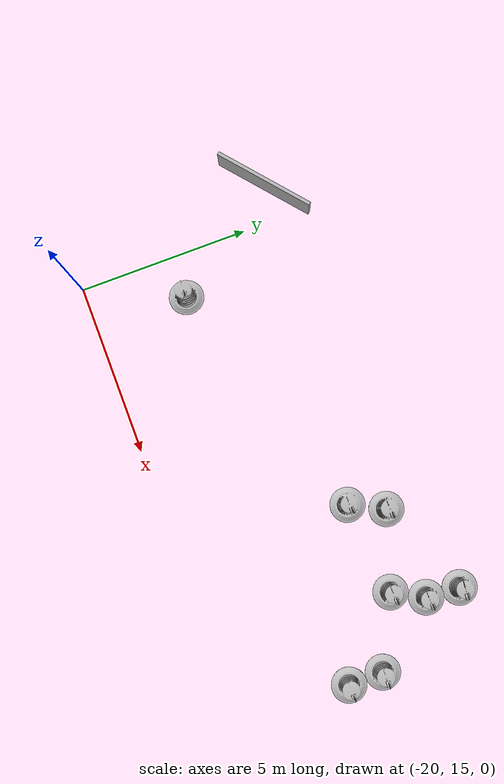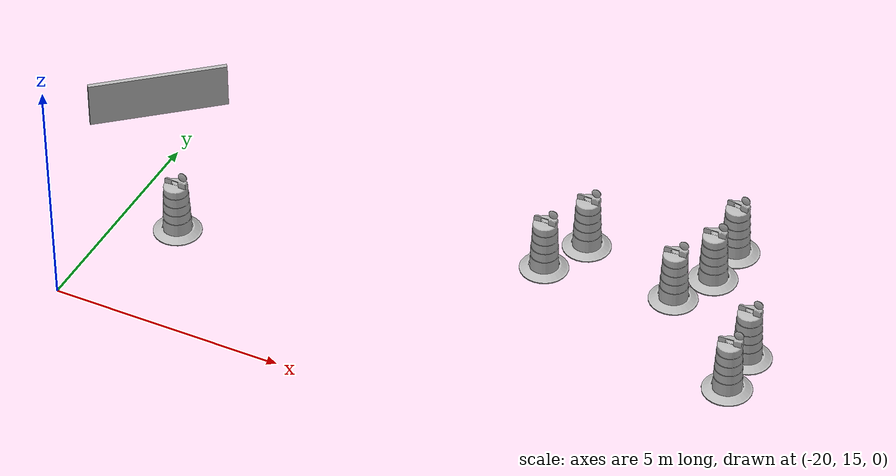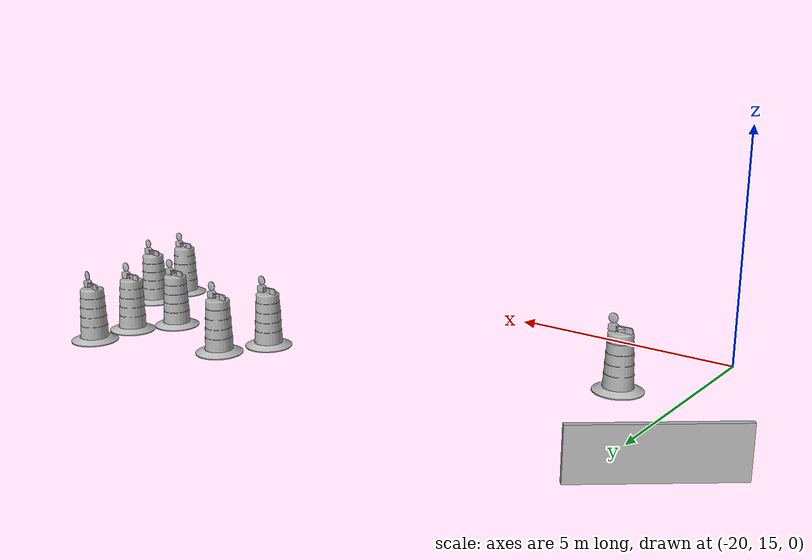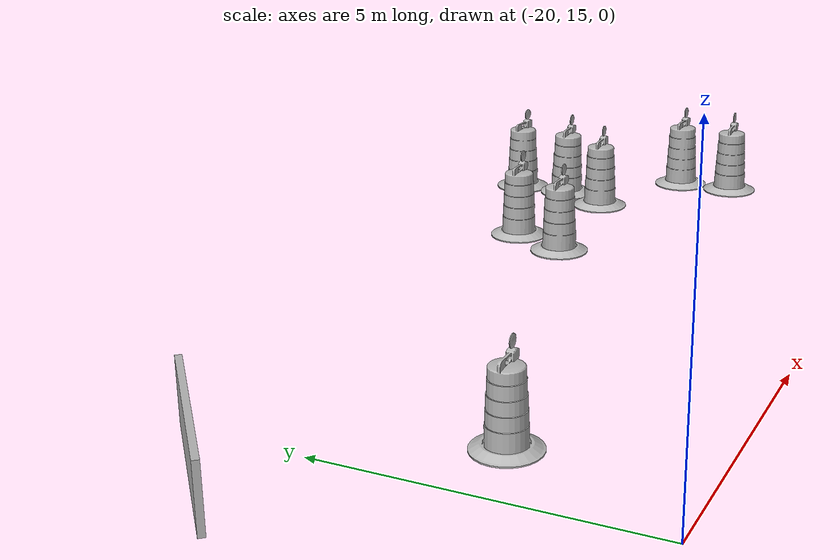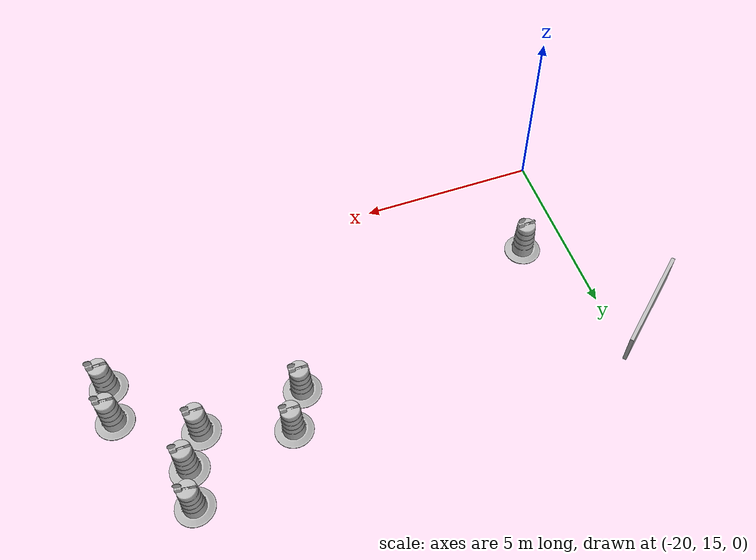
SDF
<sdf version="1.7">
 <world name="default">
  <model name="Construction Barrel_28">
   <link name="link">
    <inertial>
     <pose>0 0 0.4 0 -0 0</pose>
     <mass>500</mass>
     <inertia><ixx>51.2096</ixx><iyy>51.2096</iyy><izz>25</izz><ixy>0</ixy><ixz>0</ixz><iyz>0</iyz></inertia>
    </inertial>
    <collision name="collision">
     <geometry><mesh><uri>model://construction_barrel/meshes/construction_barrel.dae</uri></mesh></geometry>
    </collision>
    <visual name="visual">
     <geometry><mesh><uri>model://construction_barrel/meshes/construction_barrel.dae</uri></mesh></geometry>
    </visual>
    <velocity_decay><linear>0</linear><angular>0</angular></velocity_decay>
   </link>
   <pose>-18.75 17.75 0 0 0 -0.000858</pose>
   <static>0</static>
  </model>
  <model name="Construction Barrel_29">
   <link name="link">
    <inertial>
     <pose>0 0 0.4 0 -0 0</pose>
     <mass>500</mass>
     <inertia><ixx>51.2096</ixx><iyy>51.2096</iyy><izz>25</izz><ixy>0</ixy><ixz>0</ixz><iyz>0</iyz></inertia>
    </inertial>
    <collision name="collision">
     <geometry><mesh><uri>model://construction_barrel/meshes/construction_barrel.dae</uri></mesh></geometry>
    </collision>
    <visual name="visual">
     <geometry><mesh><uri>model://construction_barrel/meshes/construction_barrel.dae</uri></mesh></geometry>
    </visual>
    <velocity_decay><linear>0</linear><angular>0</angular></velocity_decay>
   </link>
   <pose>-11.5 20 -2e-06 1e-06 8e-06 -0.00084</pose>
   <static>0</static>
  </model>
  <model name="Construction Barrel_30">
   <link name="link">
    <inertial>
     <pose>0 0 0.4 0 -0 0</pose>
     <mass>500</mass>
     <inertia><ixx>51.2096</ixx><iyy>51.2096</iyy><izz>25</izz><ixy>0</ixy><ixz>0</ixz><iyz>0</iyz></inertia>
    </inertial>
    <collision name="collision">
     <geometry><mesh><uri>model://construction_barrel/meshes/construction_barrel.dae</uri></mesh></geometry>
    </collision>
    <visual name="visual">
     <geometry><mesh><uri>model://construction_barrel/meshes/construction_barrel.dae</uri></mesh></geometry>
    </visual>
    <velocity_decay><linear>0</linear><angular>0</angular></velocity_decay>
   </link>
   <pose>-11 21 -1e-06 0 5e-06 -0.001923</pose>
   <static>0</static>
  </model>
  <model name="Construction Barrel_31">
   <link name="link">
    <inertial>
     <pose>0 0 0.4 0 -0 0</pose>
     <mass>500</mass>
     <inertia><ixx>51.2096</ixx><iyy>51.2096</iyy><izz>25</izz><ixy>0</ixy><ixz>0</ixz><iyz>0</iyz></inertia>
    </inertial>
    <collision name="collision">
     <geometry><mesh><uri>model://construction_barrel/meshes/construction_barrel.dae</uri></mesh></geometry>
    </collision>
    <visual name="visual">
     <geometry><mesh><uri>model://construction_barrel/meshes/construction_barrel.dae</uri></mesh></geometry>
    </visual>
    <velocity_decay><linear>0</linear><angular>0</angular></velocity_decay>
   </link>
   <pose>-8.19738 22.1525 -0.000995 0.005084 0.000108 -0.141193</pose>
   <static>0</static>
  </model>
  <model name="Construction Barrel_33">
   <link name="link">
    <inertial>
     <pose>0 0 0.4 0 -0 0</pose>
     <mass>500</mass>
     <inertia><ixx>51.2096</ixx><iyy>51.2096</iyy><izz>25</izz><ixy>0</ixy><ixz>0</ixz><iyz>0</iyz></inertia>
    </inertial>
    <collision name="collision">
     <geometry><mesh><uri>model://construction_barrel/meshes/construction_barrel.dae</uri></mesh></geometry>
    </collision>
    <visual name="visual">
     <geometry><mesh><uri>model://construction_barrel/meshes/construction_barrel.dae</uri></mesh></geometry>
    </visual>
    <velocity_decay><linear>0</linear><angular>0</angular></velocity_decay>
   </link>
   <pose>-6.7439 18.2474 -2e-06 2e-06 7e-06 0.047426</pose>
   <static>0</static>
  </model>
  <model name="Construction Barrel_34">
   <link name="link">
    <inertial>
     <pose>0 0 0.4 0 -0 0</pose>
     <mass>500</mass>
     <inertia><ixx>51.2096</ixx><iyy>51.2096</iyy><izz>25</izz><ixy>0</ixy><ixz>0</ixz><iyz>0</iyz></inertia>
    </inertial>
    <collision name="collision">
     <geometry><mesh><uri>model://construction_barrel/meshes/construction_barrel.dae</uri></mesh></geometry>
    </collision>
    <visual name="visual">
     <geometry><mesh><uri>model://construction_barrel/meshes/construction_barrel.dae</uri></mesh></geometry>
    </visual>
    <velocity_decay><linear>0</linear><angular>0</angular></velocity_decay>
   </link>
   <pose>-8.27288 21.1666 0.012544 0.024633 -0.003196 0.019773</pose>
   <static>0</static>
  </model>
  <model name="Construction Barrel_35">
   <link name="link">
    <inertial>
     <pose>0 0 0.4 0 -0 0</pose>
     <mass>500</mass>
     <inertia><ixx>51.2096</ixx><iyy>51.2096</iyy><izz>25</izz><ixy>0</ixy><ixz>0</ixz><iyz>0</iyz></inertia>
    </inertial>
    <collision name="collision">
     <geometry><mesh><uri>model://construction_barrel/meshes/construction_barrel.dae</uri></mesh></geometry>
    </collision>
    <visual name="visual">
     <geometry><mesh><uri>model://construction_barrel/meshes/construction_barrel.dae</uri></mesh></geometry>
    </visual>
    <velocity_decay><linear>0</linear><angular>0</angular></velocity_decay>
   </link>
   <pose>-8.7623 20.2675 -0 1e-06 -1e-06 0.036283</pose>
   <static>0</static>
  </model>
  <model name="Construction Barrel_36">
   <link name="link">
    <inertial>
     <pose>0 0 0.4 0 -0 0</pose>
     <mass>500</mass>
     <inertia><ixx>51.2096</ixx><iyy>51.2096</iyy><izz>25</izz><ixy>0</ixy><ixz>0</ixz><iyz>0</iyz></inertia>
    </inertial>
    <collision name="collision">
     <geometry><mesh><uri>model://construction_barrel/meshes/construction_barrel.dae</uri></mesh></geometry>
    </collision>
    <visual name="visual">
     <geometry><mesh><uri>model://construction_barrel/meshes/construction_barrel.dae</uri></mesh></geometry>
    </visual>
    <velocity_decay><linear>0</linear><angular>0</angular></velocity_decay>
   </link>
   <pose>-6.74747 19.2662 0 0 0 -0.046664</pose>
   <static>0</static>
  </model>
  <model name="barricade_4">
   <static>1</static>
   <pose>-21 21 0.5 0 -0 0.7</pose>
   <link name="link">
    <collision name="collision"><geometry><box><size>3 0.1 1</size></box></geometry></collision>
    <visual name="visual"><geometry><box><size>3 0.1 1</size></box></geometry></visual>
   </link>
  </model>
 </world>
</sdf>
